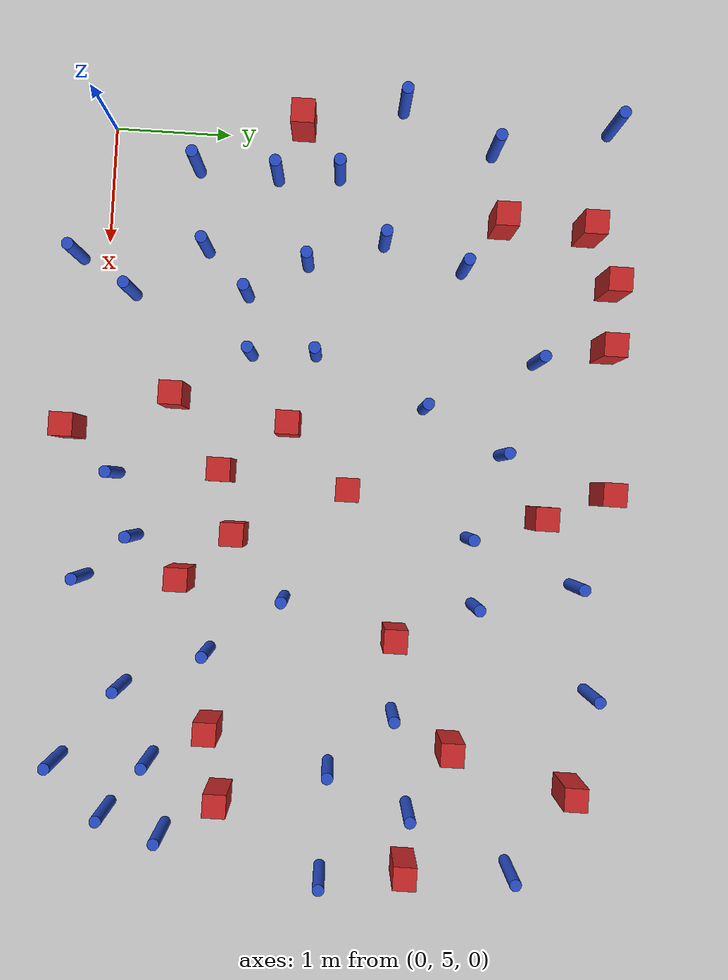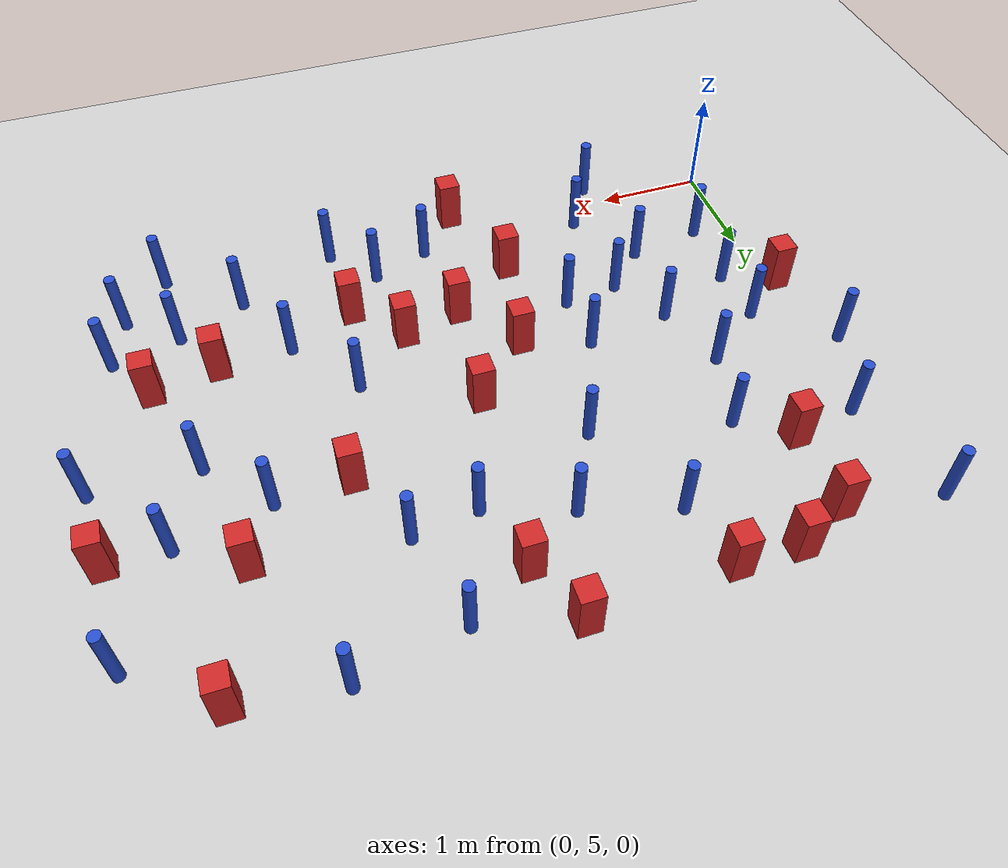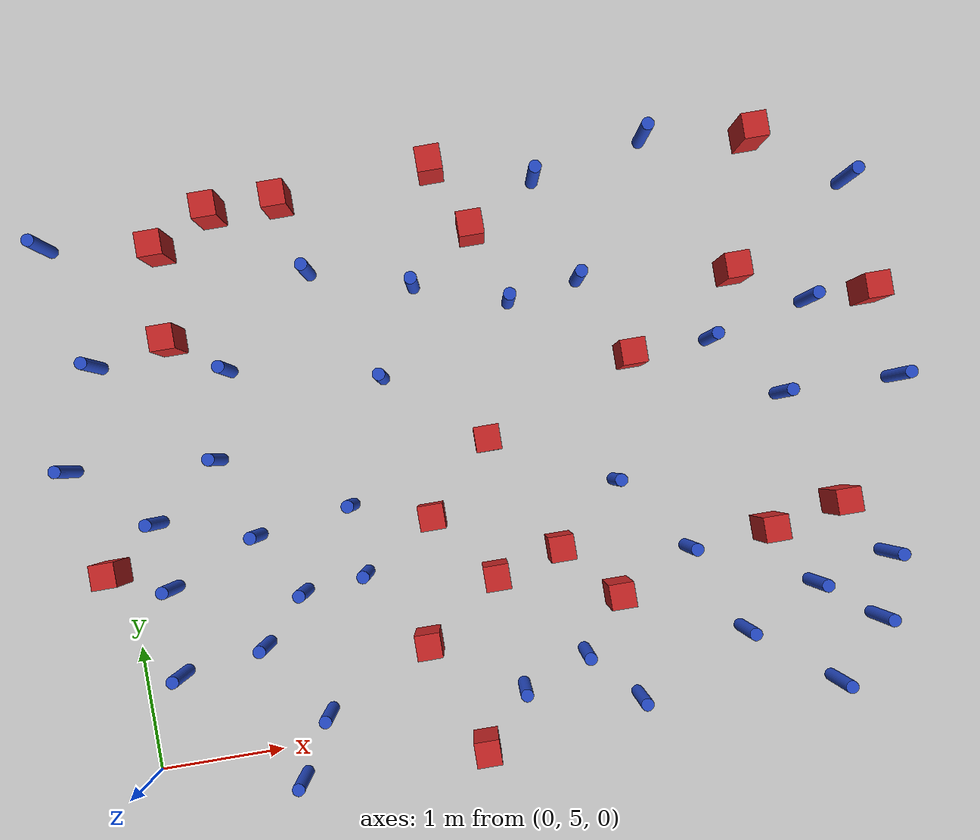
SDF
<sdf version="1.6">
 <world name="default">
  <model name="ground_plane">
   <static>1</static>
   <link name="link">
    <collision name="collision">
     <geometry><plane><normal>0 0 1</normal><size>100 100</size></plane></geometry>
     <surface><friction><ode><mu>100</mu><mu2>50</mu2></ode></friction></surface>
    </collision>
    <visual name="visual">
     <cast_shadows>0</cast_shadows>
     <geometry><plane><normal>0 0 1</normal><size>100 100</size></plane></geometry>
     <material>
      <ambient>1.0 1.0 1.0 1.0</ambient>
      <diffuse>0.8 0.8 0.8 1.0</diffuse>
      <specular>0.01 0.01 0.01 1.000000</specular>
     </material>
    </visual>
   </link>
  </model>
  <model name="square_post_obstacle2">
   <static>true</static>
   <pose>2.51177571954 6.67125785142 1.91545236811e-07 -7.35059704564e-06 1.12565212e-07 2.39332434364e-05</pose>
   <link name="link">
    <pose>0 0 0.25 0 -0 0</pose>
    <inertial>
     <mass>100</mass>
     <inertia>
      <ixx>0.166667</ixx>
      <ixy>0</ixy>
      <ixz>0</ixz>
      <iyy>0.166667</iyy>
      <iyz>0</iyz>
      <izz>0.166667</izz>
     </inertia>
    </inertial>
    <collision name="collision"><geometry><box><size>.2 .2 .5</size></box></geometry></collision>
    <visual name="visual">
     <geometry><box><size>.2 .2 .5</size></box></geometry>
     <material>
      <script><name>Gazebo/Red</name><uri>file://media/materials/scripts/gazebo.material</uri></script>
     </material>
    </visual>
   </link>
  </model>
  <model name="pole_obstacle8">
   <static>true</static>
   <pose>1.4504072979 5.25999386805 7.38925637345e-09 -8.47170692799e-08 1.24976765033e-08 -1.74513093018e-07</pose>
   <link name="link">
    <pose>0 0 0.3 0 -0 0</pose>
    <inertial>
     <mass>1</mass>
     <inertia><ixx>0.145833</ixx><ixy>0</ixy><ixz>0</ixz><iyy>0.145833</iyy><iyz>0</iyz><izz>0.125</izz></inertia>
    </inertial>
    <collision name="collision">
     <geometry><cylinder><radius>0.05</radius><length>.6</length></cylinder></geometry>
    </collision>
    <visual name="visual">
     <geometry><cylinder><radius>0.05</radius><length>.6</length></cylinder></geometry>
     <material>
      <script><name>Gazebo/Blue</name><uri>file://media/materials/scripts/gazebo.material</uri></script>
     </material>
    </visual>
   </link>
  </model>
  <model name="pole_obstacle10">
   <static>true</static>
   <pose>-0.197017820715 9.29670923958 7.38925637345e-09 -8.47170692796e-08 1.24976764775e-08 -1.74513093034e-07</pose>
   <link name="link">
    <pose>0 0 0.3 0 -0 0</pose>
    <inertial>
     <mass>1</mass>
     <inertia><ixx>0.145833</ixx><ixy>0</ixy><ixz>0</ixz><iyy>0.145833</iyy><iyz>0</iyz><izz>0.125</izz></inertia>
    </inertial>
    <collision name="collision">
     <geometry><cylinder><radius>0.05</radius><length>.6</length></cylinder></geometry>
    </collision>
    <visual name="visual">
     <geometry><cylinder><radius>0.05</radius><length>.6</length></cylinder></geometry>
     <material>
      <script><name>Gazebo/Blue</name><uri>file://media/materials/scripts/gazebo.material</uri></script>
     </material>
    </visual>
   </link>
  </model>
  <model name="square_post_obstacle14">
   <static>true</static>
   <pose>5.14971679762 6.14030444495 1.91545236811e-07 -7.35059704564e-06 1.12565212e-07 2.39332434364e-05</pose>
   <link name="link">
    <pose>0 0 0.25 0 -0 0</pose>
    <inertial>
     <mass>100</mass>
     <inertia>
      <ixx>0.166667</ixx>
      <ixy>0</ixy>
      <ixz>0</ixz>
      <iyy>0.166667</iyy>
      <iyz>0</iyz>
      <izz>0.166667</izz>
     </inertia>
    </inertial>
    <collision name="collision"><geometry><box><size>.2 .2 .5</size></box></geometry></collision>
    <visual name="visual">
     <geometry><box><size>.2 .2 .5</size></box></geometry>
     <material>
      <script><name>Gazebo/Red</name><uri>file://media/materials/scripts/gazebo.material</uri></script>
     </material>
    </visual>
   </link>
  </model>
  <model name="square_post_obstacle15">
   <static>true</static>
   <pose>0.689085537594 9.14299970515 1.91545236811e-07 -7.35059704564e-06 1.12565212e-07 2.39332434364e-05</pose>
   <link name="link">
    <pose>0 0 0.25 0 -0 0</pose>
    <inertial>
     <mass>100</mass>
     <inertia>
      <ixx>0.166667</ixx>
      <ixy>0</ixy>
      <ixz>0</ixz>
      <iyy>0.166667</iyy>
      <iyz>0</iyz>
      <izz>0.166667</izz>
     </inertia>
    </inertial>
    <collision name="collision"><geometry><box><size>.2 .2 .5</size></box></geometry></collision>
    <visual name="visual">
     <geometry><box><size>.2 .2 .5</size></box></geometry>
     <material>
      <script><name>Gazebo/Red</name><uri>file://media/materials/scripts/gazebo.material</uri></script>
     </material>
    </visual>
   </link>
  </model>
  <model name="pole_obstacle22">
   <static>true</static>
   <pose>5.89596875655 5.3019925495 7.38925637345e-09 -8.47170692796e-08 1.24976764786e-08 -1.74513093032e-07</pose>
   <link name="link">
    <pose>0 0 0.3 0 -0 0</pose>
    <inertial>
     <mass>1</mass>
     <inertia><ixx>0.145833</ixx><ixy>0</ixy><ixz>0</ixz><iyy>0.145833</iyy><iyz>0</iyz><izz>0.125</izz></inertia>
    </inertial>
    <collision name="collision">
     <geometry><cylinder><radius>0.05</radius><length>.6</length></cylinder></geometry>
    </collision>
    <visual name="visual">
     <geometry><cylinder><radius>0.05</radius><length>.6</length></cylinder></geometry>
     <material>
      <script><name>Gazebo/Blue</name><uri>file://media/materials/scripts/gazebo.material</uri></script>
     </material>
    </visual>
   </link>
  </model>
  <model name="pole_obstacle34">
   <static>true</static>
   <pose>3.97082470784 8.35610358816 7.38925637345e-09 -8.47170692793e-08 1.24976764405e-08 -1.74513093041e-07</pose>
   <link name="link">
    <pose>0 0 0.3 0 -0 0</pose>
    <inertial>
     <mass>1</mass>
     <inertia><ixx>0.145833</ixx><ixy>0</ixy><ixz>0</ixz><iyy>0.145833</iyy><iyz>0</iyz><izz>0.125</izz></inertia>
    </inertial>
    <collision name="collision">
     <geometry><cylinder><radius>0.05</radius><length>.6</length></cylinder></geometry>
    </collision>
    <visual name="visual">
     <geometry><cylinder><radius>0.05</radius><length>.6</length></cylinder></geometry>
     <material>
      <script><name>Gazebo/Blue</name><uri>file://media/materials/scripts/gazebo.material</uri></script>
     </material>
    </visual>
   </link>
  </model>
  <model name="pole_obstacle35">
   <static>true</static>
   <pose>4.66362428479 9.38741379297 7.38925637345e-09 -8.471706928e-08 1.24976765081e-08 -1.74513093015e-07</pose>
   <link name="link">
    <pose>0 0 0.3 0 -0 0</pose>
    <inertial>
     <mass>1</mass>
     <inertia><ixx>0.145833</ixx><ixy>0</ixy><ixz>0</ixz><iyy>0.145833</iyy><iyz>0</iyz><izz>0.125</izz></inertia>
    </inertial>
    <collision name="collision">
     <geometry><cylinder><radius>0.05</radius><length>.6</length></cylinder></geometry>
    </collision>
    <visual name="visual">
     <geometry><cylinder><radius>0.05</radius><length>.6</length></cylinder></geometry>
     <material>
      <script><name>Gazebo/Blue</name><uri>file://media/materials/scripts/gazebo.material</uri></script>
     </material>
    </visual>
   </link>
  </model>
  <model name="pole_obstacle45">
   <static>true</static>
   <pose>6.05385423192 5.7907426891 7.38925637345e-09 -8.47170692796e-08 1.24976764786e-08 -1.74513093032e-07</pose>
   <link name="link">
    <pose>0 0 0.3 0 -0 0</pose>
    <inertial>
     <mass>1</mass>
     <inertia><ixx>0.145833</ixx><ixy>0</ixy><ixz>0</ixz><iyy>0.145833</iyy><iyz>0</iyz><izz>0.125</izz></inertia>
    </inertial>
    <collision name="collision">
     <geometry><cylinder><radius>0.05</radius><length>.6</length></cylinder></geometry>
    </collision>
    <visual name="visual">
     <geometry><cylinder><radius>0.05</radius><length>.6</length></cylinder></geometry>
     <material>
      <script><name>Gazebo/Blue</name><uri>file://media/materials/scripts/gazebo.material</uri></script>
     </material>
    </visual>
   </link>
  </model>
  <model name="pole_obstacle46">
   <static>true</static>
   <pose>0.332981390226 6.97974885493 7.38925637345e-09 -8.471706928e-08 1.24976765079e-08 -1.74513093015e-07</pose>
   <link name="link">
    <pose>0 0 0.3 0 -0 0</pose>
    <inertial>
     <mass>1</mass>
     <inertia><ixx>0.145833</ixx><ixy>0</ixy><ixz>0</ixz><iyy>0.145833</iyy><iyz>0</iyz><izz>0.125</izz></inertia>
    </inertial>
    <collision name="collision">
     <geometry><cylinder><radius>0.05</radius><length>.6</length></cylinder></geometry>
    </collision>
    <visual name="visual">
     <geometry><cylinder><radius>0.05</radius><length>.6</length></cylinder></geometry>
     <material>
      <script><name>Gazebo/Blue</name><uri>file://media/materials/scripts/gazebo.material</uri></script>
     </material>
    </visual>
   </link>
  </model>
  <model name="pole_obstacle47">
   <static>true</static>
   <pose>1.16228260774 4.78300416284 7.38925637345e-09 -8.47170692799e-08 1.24976765033e-08 -1.74513093018e-07</pose>
   <link name="link">
    <pose>0 0 0.3 0 -0 0</pose>
    <inertial>
     <mass>1</mass>
     <inertia><ixx>0.145833</ixx><ixy>0</ixy><ixz>0</ixz><iyy>0.145833</iyy><iyz>0</iyz><izz>0.125</izz></inertia>
    </inertial>
    <collision name="collision">
     <geometry><cylinder><radius>0.05</radius><length>.6</length></cylinder></geometry>
    </collision>
    <visual name="visual">
     <geometry><cylinder><radius>0.05</radius><length>.6</length></cylinder></geometry>
     <material>
      <script><name>Gazebo/Blue</name><uri>file://media/materials/scripts/gazebo.material</uri></script>
     </material>
    </visual>
   </link>
  </model>
  <model name="square_post_obstacle38">
   <static>true</static>
   <pose>5.50469668517 9.26696232461 1.91545236811e-07 -7.35059704564e-06 1.12565212e-07 2.39332434364e-05</pose>
   <link name="link">
    <pose>0 0 0.25 0 -0 0</pose>
    <inertial>
     <mass>100</mass>
     <inertia>
      <ixx>0.166667</ixx>
      <ixy>0</ixy>
      <ixz>0</ixz>
      <iyy>0.166667</iyy>
      <iyz>0</iyz>
      <izz>0.166667</izz>
     </inertia>
    </inertial>
    <collision name="collision"><geometry><box><size>.2 .2 .5</size></box></geometry></collision>
    <visual name="visual">
     <geometry><box><size>.2 .2 .5</size></box></geometry>
     <material>
      <script><name>Gazebo/Red</name><uri>file://media/materials/scripts/gazebo.material</uri></script>
     </material>
    </visual>
   </link>
  </model>
  <model name="square_post_obstacle40">
   <static>true</static>
   <pose>4.28061626192 7.68649038741 1.91545236811e-07 -7.35059704564e-06 1.12565212e-07 2.39332434364e-05</pose>
   <link name="link">
    <pose>0 0 0.25 0 -0 0</pose>
    <inertial>
     <mass>100</mass>
     <inertia>
      <ixx>0.166667</ixx>
      <ixy>0</ixy>
      <ixz>0</ixz>
      <iyy>0.166667</iyy>
      <iyz>0</iyz>
      <izz>0.166667</izz>
     </inertia>
    </inertial>
    <collision name="collision"><geometry><box><size>.2 .2 .5</size></box></geometry></collision>
    <visual name="visual">
     <geometry><box><size>.2 .2 .5</size></box></geometry>
     <material>
      <script><name>Gazebo/Red</name><uri>file://media/materials/scripts/gazebo.material</uri></script>
     </material>
    </visual>
   </link>
  </model>
  <model name="pole_obstacle59">
   <static>true</static>
   <pose>6.20501252475 8.78640782617 7.38925637345e-09 -8.471706928e-08 1.24976765081e-08 -1.74513093015e-07</pose>
   <link name="link">
    <pose>0 0 0.3 0 -0 0</pose>
    <inertial>
     <mass>1</mass>
     <inertia><ixx>0.145833</ixx><ixy>0</ixy><ixz>0</ixz><iyy>0.145833</iyy><iyz>0</iyz><izz>0.125</izz></inertia>
    </inertial>
    <collision name="collision">
     <geometry><cylinder><radius>0.05</radius><length>.6</length></cylinder></geometry>
    </collision>
    <visual name="visual">
     <geometry><cylinder><radius>0.05</radius><length>.6</length></cylinder></geometry>
     <material>
      <script><name>Gazebo/Blue</name><uri>file://media/materials/scripts/gazebo.material</uri></script>
     </material>
    </visual>
   </link>
  </model>
  <model name="pole_obstacle63">
   <static>true</static>
   <pose>0.340265388034 5.75612330667 7.38925637345e-09 -8.471706928e-08 1.24976765079e-08 -1.74513093015e-07</pose>
   <link name="link">
    <pose>0 0 0.3 0 -0 0</pose>
    <inertial>
     <mass>1</mass>
     <inertia><ixx>0.145833</ixx><ixy>0</ixy><ixz>0</ixz><iyy>0.145833</iyy><iyz>0</iyz><izz>0.125</izz></inertia>
    </inertial>
    <collision name="collision">
     <geometry><cylinder><radius>0.05</radius><length>.6</length></cylinder></geometry>
    </collision>
    <visual name="visual">
     <geometry><cylinder><radius>0.05</radius><length>.6</length></cylinder></geometry>
     <material>
      <script><name>Gazebo/Blue</name><uri>file://media/materials/scripts/gazebo.material</uri></script>
     </material>
    </visual>
   </link>
  </model>
  <model name="pole_obstacle67">
   <static>true</static>
   <pose>3.01530341919 5.20473248663 7.38925637345e-09 -8.47170692798e-08 1.24976765033e-08 -1.74513093019e-07</pose>
   <link name="link">
    <pose>0 0 0.3 0 -0 0</pose>
    <inertial>
     <mass>1</mass>
     <inertia><ixx>0.145833</ixx><ixy>0</ixy><ixz>0</ixz><iyy>0.145833</iyy><iyz>0</iyz><izz>0.125</izz></inertia>
    </inertial>
    <collision name="collision">
     <geometry><cylinder><radius>0.05</radius><length>.6</length></cylinder></geometry>
    </collision>
    <visual name="visual">
     <geometry><cylinder><radius>0.05</radius><length>.6</length></cylinder></geometry>
     <material>
      <script><name>Gazebo/Blue</name><uri>file://media/materials/scripts/gazebo.material</uri></script>
     </material>
    </visual>
   </link>
  </model>
  <model name="square_post_obstacle54">
   <static>true</static>
   <pose>3.47623231366 6.26478424611 1.91545236811e-07 -7.35059704564e-06 1.12565212e-07 2.39332434364e-05</pose>
   <link name="link">
    <pose>0 0 0.25 0 -0 0</pose>
    <inertial>
     <mass>100</mass>
     <inertia>
      <ixx>0.166667</ixx>
      <ixy>0</ixy>
      <ixz>0</ixz>
      <iyy>0.166667</iyy>
      <iyz>0</iyz>
      <izz>0.166667</izz>
     </inertia>
    </inertial>
    <collision name="collision"><geometry><box><size>.2 .2 .5</size></box></geometry></collision>
    <visual name="visual">
     <geometry><box><size>.2 .2 .5</size></box></geometry>
     <material>
      <script><name>Gazebo/Red</name><uri>file://media/materials/scripts/gazebo.material</uri></script>
     </material>
    </visual>
   </link>
  </model>
  <model name="square_post_obstacle56">
   <static>true</static>
   <pose>5.1967373361 8.21728884822 1.91545236811e-07 -7.35059704564e-06 1.12565212e-07 2.39332434364e-05</pose>
   <link name="link">
    <pose>0 0 0.25 0 -0 0</pose>
    <inertial>
     <mass>100</mass>
     <inertia>
      <ixx>0.166667</ixx>
      <ixy>0</ixy>
      <ixz>0</ixz>
      <iyy>0.166667</iyy>
      <iyz>0</iyz>
      <izz>0.166667</izz>
     </inertia>
    </inertial>
    <collision name="collision"><geometry><box><size>.2 .2 .5</size></box></geometry></collision>
    <visual name="visual">
     <geometry><box><size>.2 .2 .5</size></box></geometry>
     <material>
      <script><name>Gazebo/Red</name><uri>file://media/materials/scripts/gazebo.material</uri></script>
     </material>
    </visual>
   </link>
  </model>
  <model name="pole_obstacle80">
   <static>true</static>
   <pose>-0.288346224999 7.5011634817 7.38925637345e-09 -8.47170692799e-08 1.24976765096e-08 -1.74513093014e-07</pose>
   <link name="link">
    <pose>0 0 0.3 0 -0 0</pose>
    <inertial>
     <mass>1</mass>
     <inertia><ixx>0.145833</ixx><ixy>0</ixy><ixz>0</ixz><iyy>0.145833</iyy><iyz>0</iyz><izz>0.125</izz></inertia>
    </inertial>
    <collision name="collision">
     <geometry><cylinder><radius>0.05</radius><length>.6</length></cylinder></geometry>
    </collision>
    <visual name="visual">
     <geometry><cylinder><radius>0.05</radius><length>.6</length></cylinder></geometry>
     <material>
      <script><name>Gazebo/Blue</name><uri>file://media/materials/scripts/gazebo.material</uri></script>
     </material>
    </visual>
   </link>
  </model>
  <model name="pole_obstacle82">
   <static>true</static>
   <pose>1.03842714808 5.8757481832 7.38925637345e-09 -8.47170692799e-08 1.24976765021e-08 -1.74513093019e-07</pose>
   <link name="link">
    <pose>0 0 0.3 0 -0 0</pose>
    <inertial>
     <mass>1</mass>
     <inertia><ixx>0.145833</ixx><ixy>0</ixy><ixz>0</ixz><iyy>0.145833</iyy><iyz>0</iyz><izz>0.125</izz></inertia>
    </inertial>
    <collision name="collision">
     <geometry><cylinder><radius>0.05</radius><length>.6</length></cylinder></geometry>
    </collision>
    <visual name="visual">
     <geometry><cylinder><radius>0.05</radius><length>.6</length></cylinder></geometry>
     <material>
      <script><name>Gazebo/Blue</name><uri>file://media/materials/scripts/gazebo.material</uri></script>
     </material>
    </visual>
   </link>
  </model>
  <model name="pole_obstacle83">
   <static>true</static>
   <pose>5.49080304081 4.85333103617 7.38925637345e-09 -8.47170692796e-08 1.24976764786e-08 -1.74513093032e-07</pose>
   <link name="link">
    <pose>0 0 0.3 0 -0 0</pose>
    <inertial>
     <mass>1</mass>
     <inertia><ixx>0.145833</ixx><ixy>0</ixy><ixz>0</ixz><iyy>0.145833</iyy><iyz>0</iyz><izz>0.125</izz></inertia>
    </inertial>
    <collision name="collision">
     <geometry><cylinder><radius>0.05</radius><length>.6</length></cylinder></geometry>
    </collision>
    <visual name="visual">
     <geometry><cylinder><radius>0.05</radius><length>.6</length></cylinder></geometry>
     <material>
      <script><name>Gazebo/Blue</name><uri>file://media/materials/scripts/gazebo.material</uri></script>
     </material>
    </visual>
   </link>
  </model>
  <model name="pole_obstacle91">
   <static>true</static>
   <pose>2.29703618252 7.83038423717 7.38925637345e-09 -8.47170692798e-08 1.24976765033e-08 -1.74513093019e-07</pose>
   <link name="link">
    <pose>0 0 0.3 0 -0 0</pose>
    <inertial>
     <mass>1</mass>
     <inertia><ixx>0.145833</ixx><ixy>0</ixy><ixz>0</ixz><iyy>0.145833</iyy><iyz>0</iyz><izz>0.125</izz></inertia>
    </inertial>
    <collision name="collision">
     <geometry><cylinder><radius>0.05</radius><length>.6</length></cylinder></geometry>
    </collision>
    <visual name="visual">
     <geometry><cylinder><radius>0.05</radius><length>.6</length></cylinder></geometry>
     <material>
      <script><name>Gazebo/Blue</name><uri>file://media/materials/scripts/gazebo.material</uri></script>
     </material>
    </visual>
   </link>
  </model>
  <model name="pole_obstacle105">
   <static>true</static>
   <pose>4.92957950756 7.70955921231 7.38925637345e-09 -8.47170692796e-08 1.24976764786e-08 -1.74513093032e-07</pose>
   <link name="link">
    <pose>0 0 0.3 0 -0 0</pose>
    <inertial>
     <mass>1</mass>
     <inertia><ixx>0.145833</ixx><ixy>0</ixy><ixz>0</ixz><iyy>0.145833</iyy><iyz>0</iyz><izz>0.125</izz></inertia>
    </inertial>
    <collision name="collision">
     <geometry><cylinder><radius>0.05</radius><length>.6</length></cylinder></geometry>
    </collision>
    <visual name="visual">
     <geometry><cylinder><radius>0.05</radius><length>.6</length></cylinder></geometry>
     <material>
      <script><name>Gazebo/Blue</name><uri>file://media/materials/scripts/gazebo.material</uri></script>
     </material>
    </visual>
   </link>
  </model>
  <model name="pole_obstacle109">
   <static>true</static>
   <pose>6.34551450877 7.1682415492 7.38925637345e-09 -8.47170692796e-08 1.24976764786e-08 -1.74513093032e-07</pose>
   <link name="link">
    <pose>0 0 0.3 0 -0 0</pose>
    <inertial>
     <mass>1</mass>
     <inertia><ixx>0.145833</ixx><ixy>0</ixy><ixz>0</ixz><iyy>0.145833</iyy><iyz>0</iyz><izz>0.125</izz></inertia>
    </inertial>
    <collision name="collision">
     <geometry><cylinder><radius>0.05</radius><length>.6</length></cylinder></geometry>
    </collision>
    <visual name="visual">
     <geometry><cylinder><radius>0.05</radius><length>.6</length></cylinder></geometry>
     <material>
      <script><name>Gazebo/Blue</name><uri>file://media/materials/scripts/gazebo.material</uri></script>
     </material>
    </visual>
   </link>
  </model>
  <model name="square_post_obstacle108">
   <static>true</static>
   <pose>2.32303748179 5.68378903377 1.91545236811e-07 -7.35059704564e-06 1.12565212e-07 2.39332434364e-05</pose>
   <link name="link">
    <pose>0 0 0.25 0 -0 0</pose>
    <inertial>
     <mass>100</mass>
     <inertia>
      <ixx>0.166667</ixx>
      <ixy>0</ixy>
      <ixz>0</ixz>
      <iyy>0.166667</iyy>
      <iyz>0</iyz>
      <izz>0.166667</izz>
     </inertia>
    </inertial>
    <collision name="collision"><geometry><box><size>.2 .2 .5</size></box></geometry></collision>
    <visual name="visual">
     <geometry><box><size>.2 .2 .5</size></box></geometry>
     <material>
      <script><name>Gazebo/Red</name><uri>file://media/materials/scripts/gazebo.material</uri></script>
     </material>
    </visual>
   </link>
  </model>
  <model name="pole_obstacle112">
   <static>true</static>
   <pose>2.66027966012 8.52119505017 7.38925637345e-09 -8.47170692793e-08 1.24976764408e-08 -1.74513093041e-07</pose>
   <link name="link">
    <pose>0 0 0.3 0 -0 0</pose>
    <inertial>
     <mass>1</mass>
     <inertia><ixx>0.145833</ixx><ixy>0</ixy><ixz>0</ixz><iyy>0.145833</iyy><iyz>0</iyz><izz>0.125</izz></inertia>
    </inertial>
    <collision name="collision">
     <geometry><cylinder><radius>0.05</radius><length>.6</length></cylinder></geometry>
    </collision>
    <visual name="visual">
     <geometry><cylinder><radius>0.05</radius><length>.6</length></cylinder></geometry>
     <material>
      <script><name>Gazebo/Blue</name><uri>file://media/materials/scripts/gazebo.material</uri></script>
     </material>
    </visual>
   </link>
  </model>
  <model name="pole_obstacle113">
   <static>true</static>
   <pose>3.91574015488 4.98183651404 7.38925637345e-09 -8.47170692798e-08 1.24976765033e-08 -1.74513093019e-07</pose>
   <link name="link">
    <pose>0 0 0.3 0 -0 0</pose>
    <inertial>
     <mass>1</mass>
     <inertia><ixx>0.145833</ixx><ixy>0</ixy><ixz>0</ixz><iyy>0.145833</iyy><iyz>0</iyz><izz>0.125</izz></inertia>
    </inertial>
    <collision name="collision">
     <geometry><cylinder><radius>0.05</radius><length>.6</length></cylinder></geometry>
    </collision>
    <visual name="visual">
     <geometry><cylinder><radius>0.05</radius><length>.6</length></cylinder></geometry>
     <material>
      <script><name>Gazebo/Blue</name><uri>file://media/materials/scripts/gazebo.material</uri></script>
     </material>
    </visual>
   </link>
  </model>
  <model name="pole_obstacle116">
   <static>true</static>
   <pose>1.40899386517 6.24582505044 7.38925637345e-09 -8.47170692799e-08 1.24976765033e-08 -1.74513093018e-07</pose>
   <link name="link">
    <pose>0 0 0.3 0 -0 0</pose>
    <inertial>
     <mass>1</mass>
     <inertia><ixx>0.145833</ixx><ixy>0</ixy><ixz>0</ixz><iyy>0.145833</iyy><iyz>0</iyz><izz>0.125</izz></inertia>
    </inertial>
    <collision name="collision">
     <geometry><cylinder><radius>0.05</radius><length>.6</length></cylinder></geometry>
    </collision>
    <visual name="visual">
     <geometry><cylinder><radius>0.05</radius><length>.6</length></cylinder></geometry>
     <material>
      <script><name>Gazebo/Blue</name><uri>file://media/materials/scripts/gazebo.material</uri></script>
     </material>
    </visual>
   </link>
  </model>
  <model name="square_post_obstacle119">
   <static>true</static>
   <pose>2.64150034626 4.78893416068 1.91545236811e-07 -7.35059704564e-06 1.12565212e-07 2.39332434364e-05</pose>
   <link name="link">
    <pose>0 0 0.25 0 -0 0</pose>
    <inertial>
     <mass>100</mass>
     <inertia>
      <ixx>0.166667</ixx>
      <ixy>0</ixy>
      <ixz>0</ixz>
      <iyy>0.166667</iyy>
      <iyz>0</iyz>
      <izz>0.166667</izz>
     </inertia>
    </inertial>
    <collision name="collision"><geometry><box><size>.2 .2 .5</size></box></geometry></collision>
    <visual name="visual">
     <geometry><box><size>.2 .2 .5</size></box></geometry>
     <material>
      <script><name>Gazebo/Red</name><uri>file://media/materials/scripts/gazebo.material</uri></script>
     </material>
    </visual>
   </link>
  </model>
  <model name="square_post_obstacle128">
   <static>true</static>
   <pose>2.93843919053 6.12358715355 1.91545236811e-07 -7.35059704564e-06 1.12565212e-07 2.39332434364e-05</pose>
   <link name="link">
    <pose>0 0 0.25 0 -0 0</pose>
    <inertial>
     <mass>100</mass>
     <inertia>
      <ixx>0.166667</ixx>
      <ixy>0</ixy>
      <ixz>0</ixz>
      <iyy>0.166667</iyy>
      <iyz>0</iyz>
      <izz>0.166667</izz>
     </inertia>
    </inertial>
    <collision name="collision"><geometry><box><size>.2 .2 .5</size></box></geometry></collision>
    <visual name="visual">
     <geometry><box><size>.2 .2 .5</size></box></geometry>
     <material>
      <script><name>Gazebo/Red</name><uri>file://media/materials/scripts/gazebo.material</uri></script>
     </material>
    </visual>
   </link>
  </model>
  <model name="pole_obstacle136">
   <static>true</static>
   <pose>3.7505137993 9.20710398968 7.38925637345e-09 -8.47170692793e-08 1.24976764408e-08 -1.74513093041e-07</pose>
   <link name="link">
    <pose>0 0 0.3 0 -0 0</pose>
    <inertial>
     <mass>1</mass>
     <inertia><ixx>0.145833</ixx><ixy>0</ixy><ixz>0</ixz><iyy>0.145833</iyy><iyz>0</iyz><izz>0.125</izz></inertia>
    </inertial>
    <collision name="collision">
     <geometry><cylinder><radius>0.05</radius><length>.6</length></cylinder></geometry>
    </collision>
    <visual name="visual">
     <geometry><cylinder><radius>0.05</radius><length>.6</length></cylinder></geometry>
     <material>
      <script><name>Gazebo/Blue</name><uri>file://media/materials/scripts/gazebo.material</uri></script>
     </material>
    </visual>
   </link>
  </model>
  <model name="square_post_obstacle133">
   <static>true</static>
   <pose>5.74110849184 6.26000147677 1.91545236811e-07 -7.35059704564e-06 1.12565212e-07 2.39332434364e-05</pose>
   <link name="link">
    <pose>0 0 0.25 0 -0 0</pose>
    <inertial>
     <mass>100</mass>
     <inertia>
      <ixx>0.166667</ixx>
      <ixy>0</ixy>
      <ixz>0</ixz>
      <iyy>0.166667</iyy>
      <iyz>0</iyz>
      <izz>0.166667</izz>
     </inertia>
    </inertial>
    <collision name="collision"><geometry><box><size>.2 .2 .5</size></box></geometry></collision>
    <visual name="visual">
     <geometry><box><size>.2 .2 .5</size></box></geometry>
     <material>
      <script><name>Gazebo/Red</name><uri>file://media/materials/scripts/gazebo.material</uri></script>
     </material>
    </visual>
   </link>
  </model>
  <model name="pole_obstacle139">
   <static>true</static>
   <pose>4.00520176671 6.7166208083 7.38925637345e-09 -8.47170692796e-08 1.24976764793e-08 -1.74513093032e-07</pose>
   <link name="link">
    <pose>0 0 0.3 0 -0 0</pose>
    <inertial>
     <mass>1</mass>
     <inertia><ixx>0.145833</ixx><ixy>0</ixy><ixz>0</ixz><iyy>0.145833</iyy><iyz>0</iyz><izz>0.125</izz></inertia>
    </inertial>
    <collision name="collision">
     <geometry><cylinder><radius>0.05</radius><length>.6</length></cylinder></geometry>
    </collision>
    <visual name="visual">
     <geometry><cylinder><radius>0.05</radius><length>.6</length></cylinder></geometry>
     <material>
      <script><name>Gazebo/Blue</name><uri>file://media/materials/scripts/gazebo.material</uri></script>
     </material>
    </visual>
   </link>
  </model>
  <model name="pole_obstacle143">
   <static>true</static>
   <pose>3.39572317449 8.27221303457 7.38925637345e-09 -8.47170692793e-08 1.24976764408e-08 -1.74513093041e-07</pose>
   <link name="link">
    <pose>0 0 0.3 0 -0 0</pose>
    <inertial>
     <mass>1</mass>
     <inertia><ixx>0.145833</ixx><ixy>0</ixy><ixz>0</ixz><iyy>0.145833</iyy><iyz>0</iyz><izz>0.125</izz></inertia>
    </inertial>
    <collision name="collision">
     <geometry><cylinder><radius>0.05</radius><length>.6</length></cylinder></geometry>
    </collision>
    <visual name="visual">
     <geometry><cylinder><radius>0.05</radius><length>.6</length></cylinder></geometry>
     <material>
      <script><name>Gazebo/Blue</name><uri>file://media/materials/scripts/gazebo.material</uri></script>
     </material>
    </visual>
   </link>
  </model>
  <model name="pole_obstacle146">
   <static>true</static>
   <pose>3.54474879001 5.40026448612 7.38925637345e-09 -8.47170692798e-08 1.24976765033e-08 -1.74513093019e-07</pose>
   <link name="link">
    <pose>0 0 0.3 0 -0 0</pose>
    <inertial>
     <mass>1</mass>
     <inertia><ixx>0.145833</ixx><ixy>0</ixy><ixz>0</ixz><iyy>0.145833</iyy><iyz>0</iyz><izz>0.125</izz></inertia>
    </inertial>
    <collision name="collision">
     <geometry><cylinder><radius>0.05</radius><length>.6</length></cylinder></geometry>
    </collision>
    <visual name="visual">
     <geometry><cylinder><radius>0.05</radius><length>.6</length></cylinder></geometry>
     <material>
      <script><name>Gazebo/Blue</name><uri>file://media/materials/scripts/gazebo.material</uri></script>
     </material>
    </visual>
   </link>
  </model>
  <model name="square_post_obstacle146">
   <static>true</static>
   <pose>0.665381427818 8.40300275684 1.91545236811e-07 -7.35059704564e-06 1.12565212e-07 2.39332434364e-05</pose>
   <link name="link">
    <pose>0 0 0.25 0 -0 0</pose>
    <inertial>
     <mass>100</mass>
     <inertia>
      <ixx>0.166667</ixx>
      <ixy>0</ixy>
      <ixz>0</ixz>
      <iyy>0.166667</iyy>
      <iyz>0</iyz>
      <izz>0.166667</izz>
     </inertia>
    </inertial>
    <collision name="collision"><geometry><box><size>.2 .2 .5</size></box></geometry></collision>
    <visual name="visual">
     <geometry><box><size>.2 .2 .5</size></box></geometry>
     <material>
      <script><name>Gazebo/Red</name><uri>file://media/materials/scripts/gazebo.material</uri></script>
     </material>
    </visual>
   </link>
  </model>
  <model name="square_post_obstacle150">
   <static>true</static>
   <pose>-0.0861563422201 6.64392713514 1.91545236811e-07 -7.35059704564e-06 1.12565212e-07 2.39332434364e-05</pose>
   <link name="link">
    <pose>0 0 0.25 0 -0 0</pose>
    <inertial>
     <mass>100</mass>
     <inertia>
      <ixx>0.166667</ixx>
      <ixy>0</ixy>
      <ixz>0</ixz>
      <iyy>0.166667</iyy>
      <iyz>0</iyz>
      <izz>0.166667</izz>
     </inertia>
    </inertial>
    <collision name="collision"><geometry><box><size>.2 .2 .5</size></box></geometry></collision>
    <visual name="visual">
     <geometry><box><size>.2 .2 .5</size></box></geometry>
     <material>
      <script><name>Gazebo/Red</name><uri>file://media/materials/scripts/gazebo.material</uri></script>
     </material>
    </visual>
   </link>
  </model>
  <model name="pole_obstacle156">
   <static>true</static>
   <pose>1.84597524329 8.76562656649 7.38925637345e-09 -8.47170692798e-08 1.24976764881e-08 -1.74513093027e-07</pose>
   <link name="link">
    <pose>0 0 0.3 0 -0 0</pose>
    <inertial>
     <mass>1</mass>
     <inertia><ixx>0.145833</ixx><ixy>0</ixy><ixz>0</ixz><iyy>0.145833</iyy><iyz>0</iyz><izz>0.125</izz></inertia>
    </inertial>
    <collision name="collision">
     <geometry><cylinder><radius>0.05</radius><length>.6</length></cylinder></geometry>
    </collision>
    <visual name="visual">
     <geometry><cylinder><radius>0.05</radius><length>.6</length></cylinder></geometry>
     <material>
      <script><name>Gazebo/Blue</name><uri>file://media/materials/scripts/gazebo.material</uri></script>
     </material>
    </visual>
   </link>
  </model>
  <model name="pole_obstacle157">
   <static>true</static>
   <pose>0.0502219603619 8.29489309705 7.38925637345e-09 -8.47170692796e-08 1.24976764747e-08 -1.74513093035e-07</pose>
   <link name="link">
    <pose>0 0 0.3 0 -0 0</pose>
    <inertial>
     <mass>1</mass>
     <inertia><ixx>0.145833</ixx><ixy>0</ixy><ixz>0</ixz><iyy>0.145833</iyy><iyz>0</iyz><izz>0.125</izz></inertia>
    </inertial>
    <collision name="collision">
     <geometry><cylinder><radius>0.05</radius><length>.6</length></cylinder></geometry>
    </collision>
    <visual name="visual">
     <geometry><cylinder><radius>0.05</radius><length>.6</length></cylinder></geometry>
     <material>
      <script><name>Gazebo/Blue</name><uri>file://media/materials/scripts/gazebo.material</uri></script>
     </material>
    </visual>
   </link>
  </model>
  <model name="pole_obstacle162">
   <static>true</static>
   <pose>1.08716661621 8.09367977251 7.38925637345e-09 -8.47170692798e-08 1.24976764881e-08 -1.74513093027e-07</pose>
   <link name="link">
    <pose>0 0 0.3 0 -0 0</pose>
    <inertial>
     <mass>1</mass>
     <inertia><ixx>0.145833</ixx><ixy>0</ixy><ixz>0</ixz><iyy>0.145833</iyy><iyz>0</iyz><izz>0.125</izz></inertia>
    </inertial>
    <collision name="collision">
     <geometry><cylinder><radius>0.05</radius><length>.6</length></cylinder></geometry>
    </collision>
    <visual name="visual">
     <geometry><cylinder><radius>0.05</radius><length>.6</length></cylinder></geometry>
     <material>
      <script><name>Gazebo/Blue</name><uri>file://media/materials/scripts/gazebo.material</uri></script>
     </material>
    </visual>
   </link>
  </model>
  <model name="square_post_obstacle160">
   <static>true</static>
   <pose>1.15309910547 9.3720002966 1.91545236811e-07 -7.35059704564e-06 1.12565212e-07 2.39332434364e-05</pose>
   <link name="link">
    <pose>0 0 0.25 0 -0 0</pose>
    <inertial>
     <mass>100</mass>
     <inertia>
      <ixx>0.166667</ixx>
      <ixy>0</ixy>
      <ixz>0</ixz>
      <iyy>0.166667</iyy>
      <iyz>0</iyz>
      <izz>0.166667</izz>
     </inertia>
    </inertial>
    <collision name="collision"><geometry><box><size>.2 .2 .5</size></box></geometry></collision>
    <visual name="visual">
     <geometry><box><size>.2 .2 .5</size></box></geometry>
     <material>
      <script><name>Gazebo/Red</name><uri>file://media/materials/scripts/gazebo.material</uri></script>
     </material>
    </visual>
   </link>
  </model>
  <model name="pole_obstacle166">
   <static>true</static>
   <pose>0.893588666108 7.40056544295 7.38925637345e-09 -8.471706928e-08 1.24976765086e-08 -1.74513093015e-07</pose>
   <link name="link">
    <pose>0 0 0.3 0 -0 0</pose>
    <inertial>
     <mass>1</mass>
     <inertia><ixx>0.145833</ixx><ixy>0</ixy><ixz>0</ixz><iyy>0.145833</iyy><iyz>0</iyz><izz>0.125</izz></inertia>
    </inertial>
    <collision name="collision">
     <geometry><cylinder><radius>0.05</radius><length>.6</length></cylinder></geometry>
    </collision>
    <visual name="visual">
     <geometry><cylinder><radius>0.05</radius><length>.6</length></cylinder></geometry>
     <material>
      <script><name>Gazebo/Blue</name><uri>file://media/materials/scripts/gazebo.material</uri></script>
     </material>
    </visual>
   </link>
  </model>
  <model name="square_post_obstacle165">
   <static>true</static>
   <pose>2.9492478505 9.43472047105 1.91545236811e-07 -7.35059704564e-06 1.12565212e-07 2.39332434364e-05</pose>
   <link name="link">
    <pose>0 0 0.25 0 -0 0</pose>
    <inertial>
     <mass>100</mass>
     <inertia>
      <ixx>0.166667</ixx>
      <ixy>0</ixy>
      <ixz>0</ixz>
      <iyy>0.166667</iyy>
      <iyz>0</iyz>
      <izz>0.166667</izz>
     </inertia>
    </inertial>
    <collision name="collision"><geometry><box><size>.2 .2 .5</size></box></geometry></collision>
    <visual name="visual">
     <geometry><box><size>.2 .2 .5</size></box></geometry>
     <material>
      <script><name>Gazebo/Red</name><uri>file://media/materials/scripts/gazebo.material</uri></script>
     </material>
    </visual>
   </link>
  </model>
  <model name="pole_obstacle173">
   <static>true</static>
   <pose>4.82827961885 5.37531895509 7.38925637345e-09 -8.47170692796e-08 1.24976764786e-08 -1.74513093032e-07</pose>
   <link name="link">
    <pose>0 0 0.3 0 -0 0</pose>
    <inertial>
     <mass>1</mass>
     <inertia><ixx>0.145833</ixx><ixy>0</ixy><ixz>0</ixz><iyy>0.145833</iyy><iyz>0</iyz><izz>0.125</izz></inertia>
    </inertial>
    <collision name="collision">
     <geometry><cylinder><radius>0.05</radius><length>.6</length></cylinder></geometry>
    </collision>
    <visual name="visual">
     <geometry><cylinder><radius>0.05</radius><length>.6</length></cylinder></geometry>
     <material>
      <script><name>Gazebo/Blue</name><uri>file://media/materials/scripts/gazebo.material</uri></script>
     </material>
    </visual>
   </link>
  </model>
  <model name="square_post_obstacle173">
   <static>true</static>
   <pose>3.18671857063 8.88424575789 1.91545236811e-07 -7.35059704564e-06 1.12565212e-07 2.39332434364e-05</pose>
   <link name="link">
    <pose>0 0 0.25 0 -0 0</pose>
    <inertial>
     <mass>100</mass>
     <inertia>
      <ixx>0.166667</ixx>
      <ixy>0</ixy>
      <ixz>0</ixz>
      <iyy>0.166667</iyy>
      <iyz>0</iyz>
      <izz>0.166667</izz>
     </inertia>
    </inertial>
    <collision name="collision"><geometry><box><size>.2 .2 .5</size></box></geometry></collision>
    <visual name="visual">
     <geometry><box><size>.2 .2 .5</size></box></geometry>
     <material>
      <script><name>Gazebo/Red</name><uri>file://media/materials/scripts/gazebo.material</uri></script>
     </material>
    </visual>
   </link>
  </model>
  <model name="pole_obstacle177">
   <static>true</static>
   <pose>1.89122674768 6.86540557192 7.38925637345e-09 -8.47170692799e-08 1.24976765033e-08 -1.74513093018e-07</pose>
   <link name="link">
    <pose>0 0 0.3 0 -0 0</pose>
    <inertial>
     <mass>1</mass>
     <inertia><ixx>0.145833</ixx><ixy>0</ixy><ixz>0</ixz><iyy>0.145833</iyy><iyz>0</iyz><izz>0.125</izz></inertia>
    </inertial>
    <collision name="collision">
     <geometry><cylinder><radius>0.05</radius><length>.6</length></cylinder></geometry>
    </collision>
    <visual name="visual">
     <geometry><cylinder><radius>0.05</radius><length>.6</length></cylinder></geometry>
     <material>
      <script><name>Gazebo/Blue</name><uri>file://media/materials/scripts/gazebo.material</uri></script>
     </material>
    </visual>
   </link>
  </model>
  <model name="pole_obstacle178">
   <static>true</static>
   <pose>1.11080975876 6.74952451909 7.38925637345e-09 -8.47170692799e-08 1.24976765033e-08 -1.74513093018e-07</pose>
   <link name="link">
    <pose>0 0 0.3 0 -0 0</pose>
    <inertial>
     <mass>1</mass>
     <inertia><ixx>0.145833</ixx><ixy>0</ixy><ixz>0</ixz><iyy>0.145833</iyy><iyz>0</iyz><izz>0.125</izz></inertia>
    </inertial>
    <collision name="collision">
     <geometry><cylinder><radius>0.05</radius><length>.6</length></cylinder></geometry>
    </collision>
    <visual name="visual">
     <geometry><cylinder><radius>0.05</radius><length>.6</length></cylinder></geometry>
     <material>
      <script><name>Gazebo/Blue</name><uri>file://media/materials/scripts/gazebo.material</uri></script>
     </material>
    </visual>
   </link>
  </model>
  <model name="square_post_obstacle178">
   <static>true</static>
   <pose>3.87842116738 5.82275121063 1.91545236811e-07 -7.35059704564e-06 1.12565212e-07 2.39332434364e-05</pose>
   <link name="link">
    <pose>0 0 0.25 0 -0 0</pose>
    <inertial>
     <mass>100</mass>
     <inertia>
      <ixx>0.166667</ixx>
      <ixy>0</ixy>
      <ixz>0</ixz>
      <iyy>0.166667</iyy>
      <iyz>0</iyz>
      <izz>0.166667</izz>
     </inertia>
    </inertial>
    <collision name="collision"><geometry><box><size>.2 .2 .5</size></box></geometry></collision>
    <visual name="visual">
     <geometry><box><size>.2 .2 .5</size></box></geometry>
     <material>
      <script><name>Gazebo/Red</name><uri>file://media/materials/scripts/gazebo.material</uri></script>
     </material>
    </visual>
   </link>
  </model>
  <model name="square_post_obstacle180">
   <static>true</static>
   <pose>3.04424077309 7.20748460491 1.91545236811e-07 -7.35059704564e-06 1.12565212e-07 2.39332434364e-05</pose>
   <link name="link">
    <pose>0 0 0.25 0 -0 0</pose>
    <inertial>
     <mass>100</mass>
     <inertia>
      <ixx>0.166667</ixx>
      <ixy>0</ixy>
      <ixz>0</ixz>
      <iyy>0.166667</iyy>
      <iyz>0</iyz>
      <izz>0.166667</izz>
     </inertia>
    </inertial>
    <collision name="collision"><geometry><box><size>.2 .2 .5</size></box></geometry></collision>
    <visual name="visual">
     <geometry><box><size>.2 .2 .5</size></box></geometry>
     <material>
      <script><name>Gazebo/Red</name><uri>file://media/materials/scripts/gazebo.material</uri></script>
     </material>
    </visual>
   </link>
  </model>
  <model name="square_post_obstacle203">
   <static>true</static>
   <pose>1.70077114032 9.36794595808 1.91545236811e-07 -7.35059704564e-06 1.12565212e-07 2.39332434364e-05</pose>
   <link name="link">
    <pose>0 0 0.25 0 -0 0</pose>
    <inertial>
     <mass>100</mass>
     <inertia>
      <ixx>0.166667</ixx>
      <ixy>0</ixy>
      <ixz>0</ixz>
      <iyy>0.166667</iyy>
      <iyz>0</iyz>
      <izz>0.166667</izz>
     </inertia>
    </inertial>
    <collision name="collision"><geometry><box><size>.2 .2 .5</size></box></geometry></collision>
    <visual name="visual">
     <geometry><box><size>.2 .2 .5</size></box></geometry>
     <material>
      <script><name>Gazebo/Red</name><uri>file://media/materials/scripts/gazebo.material</uri></script>
     </material>
    </visual>
   </link>
  </model>
  <model name="square_post_obstacle204">
   <static>true</static>
   <pose>6.24742572685 7.88201453941 1.91545236811e-07 -7.35059704564e-06 1.12565212e-07 2.39332434364e-05</pose>
   <link name="link">
    <pose>0 0 0.25 0 -0 0</pose>
    <inertial>
     <mass>100</mass>
     <inertia>
      <ixx>0.166667</ixx>
      <ixy>0</ixy>
      <ixz>0</ixz>
      <iyy>0.166667</iyy>
      <iyz>0</iyz>
      <izz>0.166667</izz>
     </inertia>
    </inertial>
    <collision name="collision"><geometry><box><size>.2 .2 .5</size></box></geometry></collision>
    <visual name="visual">
     <geometry><box><size>.2 .2 .5</size></box></geometry>
     <material>
      <script><name>Gazebo/Red</name><uri>file://media/materials/scripts/gazebo.material</uri></script>
     </material>
    </visual>
   </link>
  </model>
  <model name="pole_obstacle208">
   <static>true</static>
   <pose>5.42461047868 7.18528385657 7.38925637345e-09 -8.47170692796e-08 1.24976764786e-08 -1.74513093032e-07</pose>
   <link name="link">
    <pose>0 0 0.3 0 -0 0</pose>
    <inertial>
     <mass>1</mass>
     <inertia><ixx>0.145833</ixx><ixy>0</ixy><ixz>0</ixz><iyy>0.145833</iyy><iyz>0</iyz><izz>0.125</izz></inertia>
    </inertial>
    <collision name="collision">
     <geometry><cylinder><radius>0.05</radius><length>.6</length></cylinder></geometry>
    </collision>
    <visual name="visual">
     <geometry><cylinder><radius>0.05</radius><length>.6</length></cylinder></geometry>
     <material>
      <script><name>Gazebo/Blue</name><uri>file://media/materials/scripts/gazebo.material</uri></script>
     </material>
    </visual>
   </link>
  </model>
  <model name="pole_obstacle209">
   <static>true</static>
   <pose>0.374679225824 6.44618628604 7.38925637345e-09 -8.471706928e-08 1.24976765079e-08 -1.74513093015e-07</pose>
   <link name="link">
    <pose>0 0 0.3 0 -0 0</pose>
    <inertial>
     <mass>1</mass>
     <inertia><ixx>0.145833</ixx><ixy>0</ixy><ixz>0</ixz><iyy>0.145833</iyy><iyz>0</iyz><izz>0.125</izz></inertia>
    </inertial>
    <collision name="collision">
     <geometry><cylinder><radius>0.05</radius><length>.6</length></cylinder></geometry>
    </collision>
    <visual name="visual">
     <geometry><cylinder><radius>0.05</radius><length>.6</length></cylinder></geometry>
     <material>
      <script><name>Gazebo/Blue</name><uri>file://media/materials/scripts/gazebo.material</uri></script>
     </material>
    </visual>
   </link>
  </model>
  <model name="pole_obstacle215">
   <static>true</static>
   <pose>1.91991568732 6.30912811152 7.38925637345e-09 -8.47170692799e-08 1.24976765033e-08 -1.74513093018e-07</pose>
   <link name="link">
    <pose>0 0 0.3 0 -0 0</pose>
    <inertial>
     <mass>1</mass>
     <inertia><ixx>0.145833</ixx><ixy>0</ixy><ixz>0</ixz><iyy>0.145833</iyy><iyz>0</iyz><izz>0.125</izz></inertia>
    </inertial>
    <collision name="collision">
     <geometry><cylinder><radius>0.05</radius><length>.6</length></cylinder></geometry>
    </collision>
    <visual name="visual">
     <geometry><cylinder><radius>0.05</radius><length>.6</length></cylinder></geometry>
     <material>
      <script><name>Gazebo/Blue</name><uri>file://media/materials/scripts/gazebo.material</uri></script>
     </material>
    </visual>
   </link>
  </model>
  <model name="pole_obstacle219">
   <static>true</static>
   <pose>5.7454000261 7.88864091269 7.38925637345e-09 -8.47170692796e-08 1.24976764786e-08 -1.74513093032e-07</pose>
   <link name="link">
    <pose>0 0 0.3 0 -0 0</pose>
    <inertial>
     <mass>1</mass>
     <inertia><ixx>0.145833</ixx><ixy>0</ixy><ixz>0</ixz><iyy>0.145833</iyy><iyz>0</iyz><izz>0.125</izz></inertia>
    </inertial>
    <collision name="collision">
     <geometry><cylinder><radius>0.05</radius><length>.6</length></cylinder></geometry>
    </collision>
    <visual name="visual">
     <geometry><cylinder><radius>0.05</radius><length>.6</length></cylinder></geometry>
     <material>
      <script><name>Gazebo/Blue</name><uri>file://media/materials/scripts/gazebo.material</uri></script>
     </material>
    </visual>
   </link>
  </model>
  <model name="pole_obstacle225">
   <static>true</static>
   <pose>4.49265202132 6.09086577708 7.38925637345e-09 -8.47170692796e-08 1.24976764786e-08 -1.74513093032e-07</pose>
   <link name="link">
    <pose>0 0 0.3 0 -0 0</pose>
    <inertial>
     <mass>1</mass>
     <inertia><ixx>0.145833</ixx><ixy>0</ixy><ixz>0</ixz><iyy>0.145833</iyy><iyz>0</iyz><izz>0.125</izz></inertia>
    </inertial>
    <collision name="collision">
     <geometry><cylinder><radius>0.05</radius><length>.6</length></cylinder></geometry>
    </collision>
    <visual name="visual">
     <geometry><cylinder><radius>0.05</radius><length>.6</length></cylinder></geometry>
     <material>
      <script><name>Gazebo/Blue</name><uri>file://media/materials/scripts/gazebo.material</uri></script>
     </material>
    </visual>
   </link>
  </model>
  <model name="pole_obstacle242">
   <static>true</static>
   <pose>5.43962000957 5.64976002078 7.38925637345e-09 -8.47170692796e-08 1.24976764786e-08 -1.74513093032e-07</pose>
   <link name="link">
    <pose>0 0 0.3 0 -0 0</pose>
    <inertial>
     <mass>1</mass>
     <inertia><ixx>0.145833</ixx><ixy>0</ixy><ixz>0</ixz><iyy>0.145833</iyy><iyz>0</iyz><izz>0.125</izz></inertia>
    </inertial>
    <collision name="collision">
     <geometry><cylinder><radius>0.05</radius><length>.6</length></cylinder></geometry>
    </collision>
    <visual name="visual">
     <geometry><cylinder><radius>0.05</radius><length>.6</length></cylinder></geometry>
     <material>
      <script><name>Gazebo/Blue</name><uri>file://media/materials/scripts/gazebo.material</uri></script>
     </material>
    </visual>
   </link>
  </model>
 </world>
</sdf>
